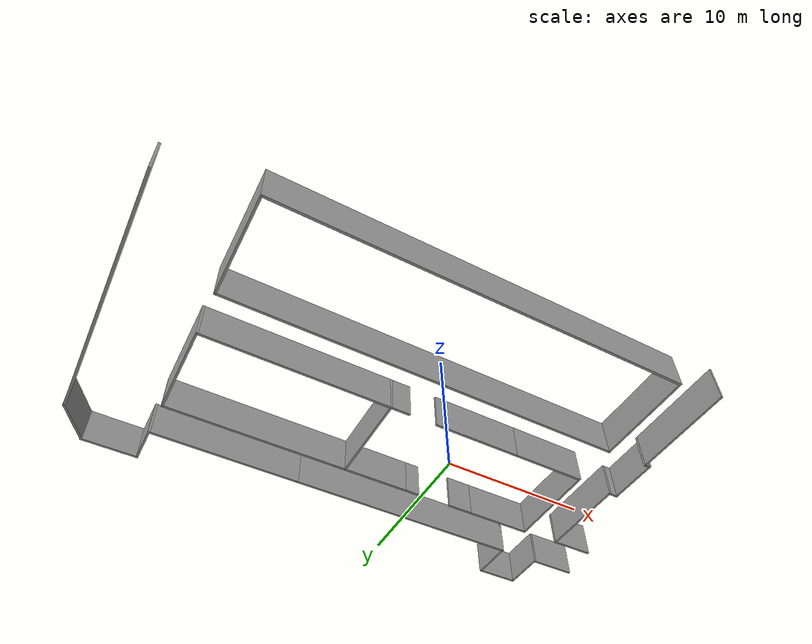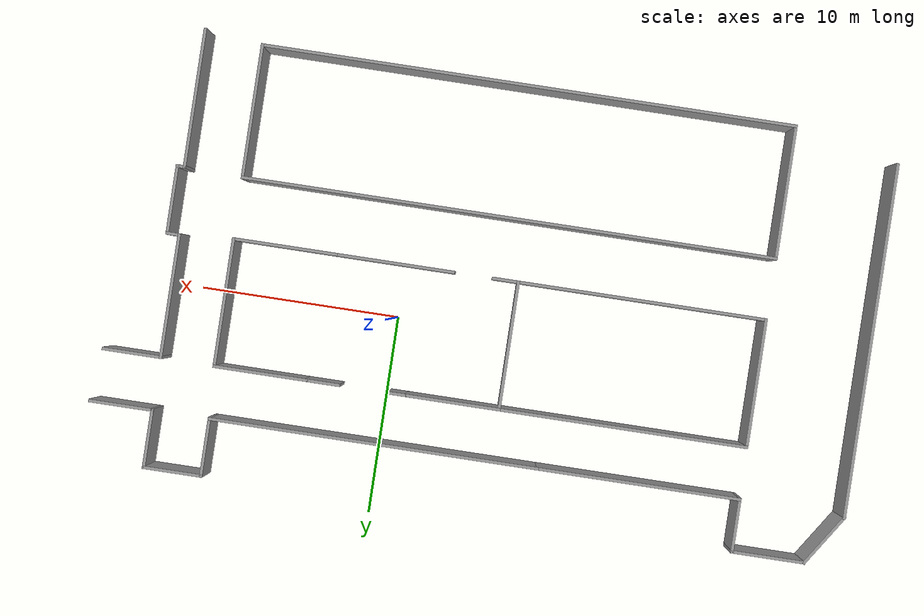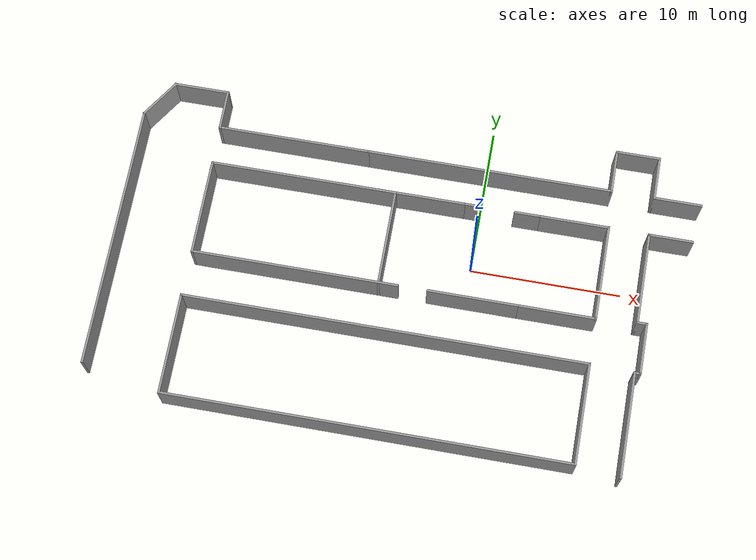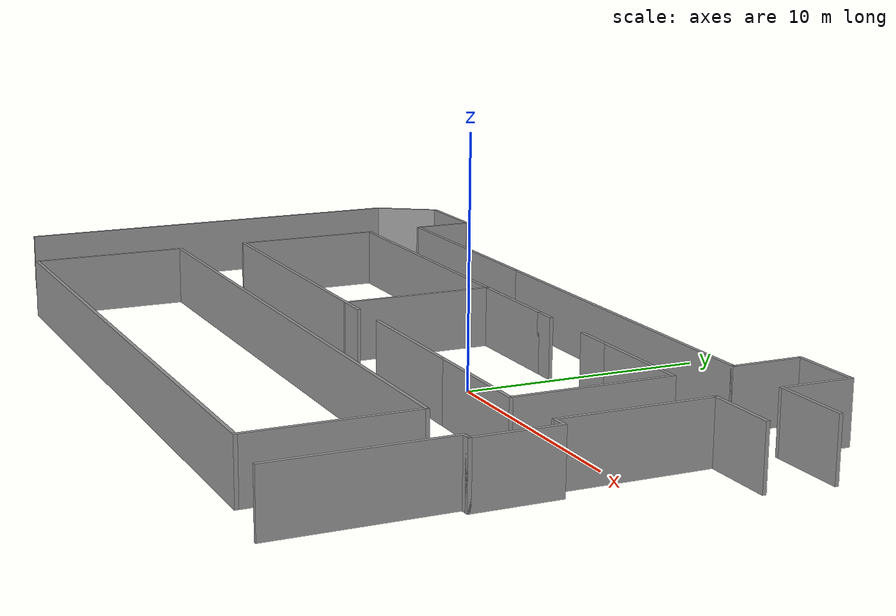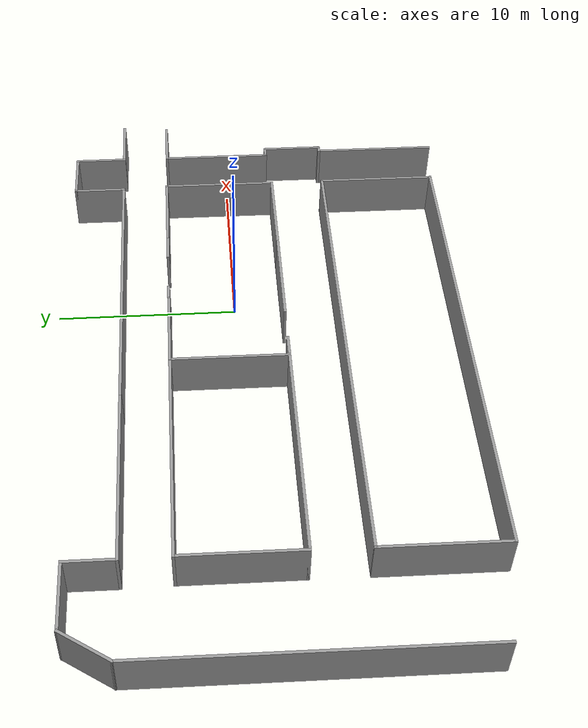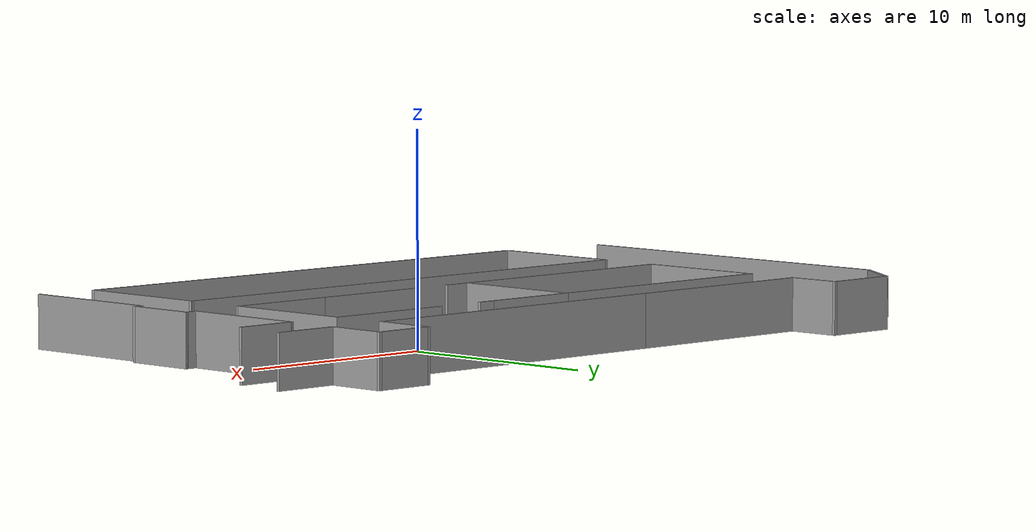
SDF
<?xml version='1.0'?>
<sdf version='1.6'>
  <model name='Sarkeys_Model'>
    <pose frame=''>-4.56198 -1.75072 0 0 -0 0</pose>
    <link name='Wall_32'>
      <collision name='Wall_32_Collision'>
        <geometry>
          <box>
            <size>4.75 0.15 2.5</size>
          </box>
        </geometry>
        <pose frame=''>0 0 1.25 0 -0 0</pose>
      </collision>
      <visual name='Wall_32_Visual'>
        <pose frame=''>0 0 1.25 0 -0 0</pose>
        <geometry>
          <box>
            <size>4.75 0.15 2.5</size>
          </box>
        </geometry>
        <material>
          <script>
            <uri>file://media/materials/scripts/gazebo.material</uri>
            <name>Gazebo/Grey</name>
          </script>
          <ambient>1 1 1 1</ambient>
        </material>
        <meta>
          <layer>0</layer>
        </meta>
      </visual>
      <pose frame=''>1.13149 5.44774 0 0 -0 0</pose>
    </link>
    <link name='Wall_36'>
      <collision name='Wall_36_Collision'>
        <geometry>
          <box>
            <size>6.5 0.15 2.5</size>
          </box>
        </geometry>
        <pose frame=''>0 0 1.25 0 -0 0</pose>
      </collision>
      <visual name='Wall_36_Visual'>
        <pose frame=''>0 0 1.25 0 -0 0</pose>
        <geometry>
          <box>
            <size>6.5 0.15 2.5</size>
          </box>
        </geometry>
        <material>
          <script>
            <uri>file://media/materials/scripts/gazebo.material</uri>
            <name>Gazebo/Grey</name>
          </script>
          <ambient>1 1 1 1</ambient>
        </material>
        <meta>
          <layer>0</layer>
        </meta>
      </visual>
      <pose frame=''>-1.16851 2.27274 0 0 -0 -1.5708</pose>
    </link>
    <link name='Wall_48'>
      <collision name='Wall_48_Collision'>
        <geometry>
          <box>
            <size>16.5 0.15 2.5</size>
          </box>
        </geometry>
        <pose frame=''>0 0 1.25 0 -0 0</pose>
      </collision>
      <visual name='Wall_48_Visual'>
        <pose frame=''>0 0 1.25 0 -0 0</pose>
        <geometry>
          <box>
            <size>16.5 0.15 2.5</size>
          </box>
        </geometry>
        <material>
          <script>
            <uri>file://media/materials/scripts/gazebo.material</uri>
            <name>Gazebo/Grey</name>
          </script>
          <ambient>1 1 1 1</ambient>
        </material>
        <meta>
          <layer>0</layer>
        </meta>
      </visual>
      <pose frame=''>4.70026 8.04291 0 0 -0 0</pose>
    </link>
    <link name='Wall_49'>
      <collision name='Wall_49_Collision'>
        <geometry>
          <box>
            <size>3 0.15 2.5</size>
          </box>
        </geometry>
        <pose frame=''>0 0 1.25 0 -0 0</pose>
      </collision>
      <visual name='Wall_49_Visual'>
        <pose frame=''>0 0 1.25 0 -0 0</pose>
        <geometry>
          <box>
            <size>3 0.15 2.5</size>
          </box>
        </geometry>
        <material>
          <script>
            <uri>file://media/materials/scripts/gazebo.material</uri>
            <name>Gazebo/Grey</name>
          </script>
          <ambient>1 1 1 1</ambient>
        </material>
        <meta>
          <layer>0</layer>
        </meta>
      </visual>
      <pose frame=''>12.8753 9.46791 0 0 -0 1.5708</pose>
    </link>
    <link name='Wall_50'>
      <collision name='Wall_50_Collision'>
        <geometry>
          <box>
            <size>3 0.15 2.5</size>
          </box>
        </geometry>
        <pose frame=''>0 0 1.25 0 -0 0</pose>
      </collision>
      <visual name='Wall_50_Visual'>
        <pose frame=''>0 0 1.25 0 -0 0</pose>
        <geometry>
          <box>
            <size>3 0.15 2.5</size>
          </box>
        </geometry>
        <material>
          <script>
            <uri>file://media/materials/scripts/gazebo.material</uri>
            <name>Gazebo/Grey</name>
          </script>
          <ambient>1 1 1 1</ambient>
        </material>
        <meta>
          <layer>0</layer>
        </meta>
      </visual>
      <pose frame=''>14.3003 10.8929 0 0 -0 0</pose>
    </link>
    <link name='Wall_51'>
      <collision name='Wall_51_Collision'>
        <geometry>
          <box>
            <size>3 0.15 2.5</size>
          </box>
        </geometry>
        <pose frame=''>0 0 1.25 0 -0 0</pose>
      </collision>
      <visual name='Wall_51_Visual'>
        <pose frame=''>0 0 1.25 0 -0 0</pose>
        <geometry>
          <box>
            <size>3 0.15 2.5</size>
          </box>
        </geometry>
        <material>
          <script>
            <uri>file://media/materials/scripts/gazebo.material</uri>
            <name>Gazebo/Grey</name>
          </script>
          <ambient>1 1 1 1</ambient>
        </material>
        <meta>
          <layer>0</layer>
        </meta>
      </visual>
      <pose frame=''>15.7253 9.46791 0 0 -0 -1.5708</pose>
    </link>
    <link name='Wall_52'>
      <collision name='Wall_52_Collision'>
        <geometry>
          <box>
            <size>3.25 0.15 2.5</size>
          </box>
        </geometry>
        <pose frame=''>0 0 1.25 0 -0 0</pose>
      </collision>
      <visual name='Wall_52_Visual'>
        <pose frame=''>0 0 1.25 0 -0 0</pose>
        <geometry>
          <box>
            <size>3.25 0.15 2.5</size>
          </box>
        </geometry>
        <material>
          <script>
            <uri>file://media/materials/scripts/gazebo.material</uri>
            <name>Gazebo/Grey</name>
          </script>
          <ambient>1 1 1 1</ambient>
        </material>
        <meta>
          <layer>0</layer>
        </meta>
      </visual>
      <pose frame=''>17.2753 8.04291 0 0 -0 0</pose>
    </link>
    <link name='Wall_54'>
      <collision name='Wall_54_Collision'>
        <geometry>
          <box>
            <size>10.25 0.15 2.5</size>
          </box>
        </geometry>
        <pose frame=''>0 0 1.25 0 -0 0</pose>
      </collision>
      <visual name='Wall_54_Visual'>
        <pose frame=''>0 0 1.25 0 -0 0</pose>
        <geometry>
          <box>
            <size>10.25 0.15 2.5</size>
          </box>
        </geometry>
        <material>
          <script>
            <uri>file://media/materials/scripts/gazebo.material</uri>
            <name>Gazebo/Grey</name>
          </script>
          <ambient>1 1 1 1</ambient>
        </material>
        <meta>
          <layer>0</layer>
        </meta>
      </visual>
      <pose frame=''>-8.52474 8.04291 0 0 -0 3.14159</pose>
    </link>
    <link name='Wall_56'>
      <collision name='Wall_56_Collision'>
        <geometry>
          <box>
            <size>12.5 0.15 2.5</size>
          </box>
        </geometry>
        <pose frame=''>0 0 1.25 0 -0 0</pose>
      </collision>
      <visual name='Wall_56_Visual'>
        <pose frame=''>0 0 1.25 0 -0 0</pose>
        <geometry>
          <box>
            <size>12.5 0.15 2.5</size>
          </box>
        </geometry>
        <material>
          <script>
            <uri>file://media/materials/scripts/gazebo.material</uri>
            <name>Gazebo/Grey</name>
          </script>
          <ambient>1 1 1 1</ambient>
        </material>
        <meta>
          <layer>0</layer>
        </meta>
      </visual>
      <pose frame=''>-7.34351 5.44774 0 0 -0 3.14159</pose>
    </link>
    <link name='Wall_57'>
      <collision name='Wall_57_Collision'>
        <geometry>
          <box>
            <size>6.5 0.15 2.5</size>
          </box>
        </geometry>
        <pose frame=''>0 0 1.25 0 -0 0</pose>
      </collision>
      <visual name='Wall_57_Visual'>
        <pose frame=''>0 0 1.25 0 -0 0</pose>
        <geometry>
          <box>
            <size>6.5 0.15 2.5</size>
          </box>
        </geometry>
        <material>
          <script>
            <uri>file://media/materials/scripts/gazebo.material</uri>
            <name>Gazebo/Grey</name>
          </script>
          <ambient>1 1 1 1</ambient>
        </material>
        <meta>
          <layer>0</layer>
        </meta>
      </visual>
      <pose frame=''>-13.5185 2.27274 0 0 -0 -1.5708</pose>
    </link>
    <link name='Wall_58'>
      <collision name='Wall_58_Collision'>
        <geometry>
          <box>
            <size>13.75 0.15 2.5</size>
          </box>
        </geometry>
        <pose frame=''>0 0 1.25 0 -0 0</pose>
      </collision>
      <visual name='Wall_58_Visual'>
        <pose frame=''>0 0 1.25 0 -0 0</pose>
        <geometry>
          <box>
            <size>13.75 0.15 2.5</size>
          </box>
        </geometry>
        <material>
          <script>
            <uri>file://media/materials/scripts/gazebo.material</uri>
            <name>Gazebo/Grey</name>
          </script>
          <ambient>1 1 1 1</ambient>
        </material>
        <meta>
          <layer>0</layer>
        </meta>
      </visual>
      <pose frame=''>-6.71851 -0.902257 0 0 -0 0</pose>
    </link>
    <link name='Wall_62'>
      <collision name='Wall_62_Collision'>
        <geometry>
          <box>
            <size>4.75 0.15 2.5</size>
          </box>
        </geometry>
        <pose frame=''>0 0 1.25 0 -0 0</pose>
      </collision>
      <visual name='Wall_62_Visual'>
        <pose frame=''>0 0 1.25 0 -0 0</pose>
        <geometry>
          <box>
            <size>4.75 0.15 2.5</size>
          </box>
        </geometry>
        <material>
          <script>
            <uri>file://media/materials/scripts/gazebo.material</uri>
            <name>Gazebo/Grey</name>
          </script>
          <ambient>1 1 1 1</ambient>
        </material>
        <meta>
          <layer>0</layer>
        </meta>
      </visual>
      <pose frame=''>10.7315 5.44774 0 0 -0 0</pose>
    </link>
    <link name='Wall_63'>
      <collision name='Wall_63_Collision'>
        <geometry>
          <box>
            <size>6.5 0.15 2.5</size>
          </box>
        </geometry>
        <pose frame=''>0 0 1.25 0 -0 0</pose>
      </collision>
      <visual name='Wall_63_Visual'>
        <pose frame=''>0 0 1.25 0 -0 0</pose>
        <geometry>
          <box>
            <size>6.5 0.15 2.5</size>
          </box>
        </geometry>
        <material>
          <script>
            <uri>file://media/materials/scripts/gazebo.material</uri>
            <name>Gazebo/Grey</name>
          </script>
          <ambient>1 1 1 1</ambient>
        </material>
        <meta>
          <layer>0</layer>
        </meta>
      </visual>
      <pose frame=''>13.0315 2.27274 0 0 -0 -1.5708</pose>
    </link>
    <link name='Wall_64'>
      <collision name='Wall_64_Collision'>
        <geometry>
          <box>
            <size>5.25 0.15 2.5</size>
          </box>
        </geometry>
        <pose frame=''>0 0 1.25 0 -0 0</pose>
      </collision>
      <visual name='Wall_64_Visual'>
        <pose frame=''>0 0 1.25 0 -0 0</pose>
        <geometry>
          <box>
            <size>5.25 0.15 2.5</size>
          </box>
        </geometry>
        <material>
          <script>
            <uri>file://media/materials/scripts/gazebo.material</uri>
            <name>Gazebo/Grey</name>
          </script>
          <ambient>1 1 1 1</ambient>
        </material>
        <meta>
          <layer>0</layer>
        </meta>
      </visual>
      <pose frame=''>10.4815 -0.902257 0 0 -0 3.14159</pose>
    </link>
    <link name='Wall_70'>
      <collision name='Wall_70_Collision'>
        <geometry>
          <box>
            <size>17.75 0.15 2.5</size>
          </box>
        </geometry>
        <pose frame=''>0 0 1.25 0 -0 0</pose>
      </collision>
      <visual name='Wall_70_Visual'>
        <pose frame=''>0 0 1.25 0 -0 0</pose>
        <geometry>
          <box>
            <size>17.75 0.15 2.5</size>
          </box>
        </geometry>
        <material>
          <script>
            <uri>file://media/materials/scripts/gazebo.material</uri>
            <name>Gazebo/Grey</name>
          </script>
          <ambient>1 1 1 1</ambient>
        </material>
        <meta>
          <layer>0</layer>
        </meta>
      </visual>
      <pose frame=''>-18.7964 -0.628731 0 0 -0 -1.5708</pose>
    </link>
    <link name='Wall_73'>
      <collision name='Wall_73_Collision'>
        <geometry>
          <box>
            <size>2.75 0.15 2.5</size>
          </box>
        </geometry>
        <pose frame=''>0 0 1.25 0 -0 0</pose>
      </collision>
      <visual name='Wall_73_Visual'>
        <pose frame=''>0 0 1.25 0 -0 0</pose>
        <geometry>
          <box>
            <size>2.75 0.15 2.5</size>
          </box>
        </geometry>
        <material>
          <script>
            <uri>file://media/materials/scripts/gazebo.material</uri>
            <name>Gazebo/Grey</name>
          </script>
          <ambient>1 1 1 1</ambient>
        </material>
        <meta>
          <layer>0</layer>
        </meta>
      </visual>
      <pose frame=''>-13.5747 9.34291 0 0 -0 1.5708</pose>
    </link>
    <link name='Wall_74'>
      <collision name='Wall_74_Collision'>
        <geometry>
          <box>
            <size>3.75 0.15 2.5</size>
          </box>
        </geometry>
        <pose frame=''>0 0 1.25 0 -0 0</pose>
      </collision>
      <visual name='Wall_74_Visual'>
        <pose frame=''>0 0 1.25 0 -0 0</pose>
        <geometry>
          <box>
            <size>3.75 0.15 2.5</size>
          </box>
        </geometry>
        <material>
          <script>
            <uri>file://media/materials/scripts/gazebo.material</uri>
            <name>Gazebo/Grey</name>
          </script>
          <ambient>1 1 1 1</ambient>
        </material>
        <meta>
          <layer>0</layer>
        </meta>
      </visual>
      <pose frame=''>-15.3747 10.6429 0 0 -0 3.14159</pose>
    </link>
    <link name='Wall_75'>
      <collision name='Wall_75_Collision'>
        <geometry>
          <box>
            <size>3.10615 0.15 2.5</size>
          </box>
        </geometry>
        <pose frame=''>0 0 1.25 0 -0 0</pose>
      </collision>
      <visual name='Wall_75_Visual'>
        <pose frame=''>0 0 1.25 0 -0 0</pose>
        <geometry>
          <box>
            <size>3.10615 0.15 2.5</size>
          </box>
        </geometry>
        <material>
          <script>
            <uri>file://media/materials/scripts/gazebo.material</uri>
            <name>Gazebo/Grey</name>
          </script>
          <ambient>1 1 1 1</ambient>
        </material>
        <meta>
          <layer>0</layer>
        </meta>
      </visual>
      <pose frame=''>-17.9856 9.40709 0 0 -0 -2.15146</pose>
    </link>
    <link name='Wall_77'>
      <collision name='Wall_77_Collision'>
        <geometry>
          <box>
            <size>26.75 0.15 2.5</size>
          </box>
        </geometry>
        <pose frame=''>0 0 1.25 0 -0 0</pose>
      </collision>
      <visual name='Wall_77_Visual'>
        <pose frame=''>0 0 1.25 0 -0 0</pose>
        <geometry>
          <box>
            <size>26.75 0.15 2.5</size>
          </box>
        </geometry>
        <material>
          <script>
            <uri>file://media/materials/scripts/gazebo.material</uri>
            <name>Gazebo/Grey</name>
          </script>
          <ambient>1 1 1 1</ambient>
        </material>
        <meta>
          <layer>0</layer>
        </meta>
      </visual>
      <pose frame=''>-0.243055 -3.96346 0 0 -0 0</pose>
    </link>
    <link name='Wall_78'>
      <collision name='Wall_78_Collision'>
        <geometry>
          <box>
            <size>6.75 0.15 2.5</size>
          </box>
        </geometry>
        <pose frame=''>0 0 1.25 0 -0 0</pose>
      </collision>
      <visual name='Wall_78_Visual'>
        <pose frame=''>0 0 1.25 0 -0 0</pose>
        <geometry>
          <box>
            <size>6.75 0.15 2.5</size>
          </box>
        </geometry>
        <material>
          <script>
            <uri>file://media/materials/scripts/gazebo.material</uri>
            <name>Gazebo/Grey</name>
          </script>
          <ambient>1 1 1 1</ambient>
        </material>
        <meta>
          <layer>0</layer>
        </meta>
      </visual>
      <pose frame=''>13.0569 -7.26346 0 0 -0 -1.5708</pose>
    </link>
    <link name='Wall_81'>
      <collision name='Wall_81_Collision'>
        <geometry>
          <box>
            <size>26.75 0.15 2.5</size>
          </box>
        </geometry>
        <pose frame=''>0 0 1.25 0 -0 0</pose>
      </collision>
      <visual name='Wall_81_Visual'>
        <pose frame=''>0 0 1.25 0 -0 0</pose>
        <geometry>
          <box>
            <size>26.75 0.15 2.5</size>
          </box>
        </geometry>
        <material>
          <script>
            <uri>file://media/materials/scripts/gazebo.material</uri>
            <name>Gazebo/Grey</name>
          </script>
          <ambient>1 1 1 1</ambient>
        </material>
        <meta>
          <layer>0</layer>
        </meta>
      </visual>
      <pose frame=''>-0.243055 -10.5635 0 0 -0 3.14159</pose>
    </link>
    <link name='Wall_82'>
      <collision name='Wall_82_Collision'>
        <geometry>
          <box>
            <size>6.75 0.15 2.5</size>
          </box>
        </geometry>
        <pose frame=''>0 0 1.25 0 -0 0</pose>
      </collision>
      <visual name='Wall_82_Visual'>
        <pose frame=''>0 0 1.25 0 -0 0</pose>
        <geometry>
          <box>
            <size>6.75 0.15 2.5</size>
          </box>
        </geometry>
        <material>
          <script>
            <uri>file://media/materials/scripts/gazebo.material</uri>
            <name>Gazebo/Grey</name>
          </script>
          <ambient>1 1 1 1</ambient>
        </material>
        <meta>
          <layer>0</layer>
        </meta>
      </visual>
      <pose frame=''>-13.5431 -7.26346 0 0 -0 1.5708</pose>
    </link>
    <link name='Wall_84'>
      <collision name='Wall_84_Collision'>
        <geometry>
          <box>
            <size>6.25 0.15 2.5</size>
          </box>
        </geometry>
        <pose frame=''>0 0 1.25 0 -0 0</pose>
      </collision>
      <visual name='Wall_84_Visual'>
        <pose frame=''>0 0 1.25 0 -0 0</pose>
        <geometry>
          <box>
            <size>6.25 0.15 2.5</size>
          </box>
        </geometry>
        <material>
          <script>
            <uri>file://media/materials/scripts/gazebo.material</uri>
            <name>Gazebo/Grey</name>
          </script>
          <ambient>1 1 1 1</ambient>
        </material>
        <meta>
          <layer>0</layer>
        </meta>
      </visual>
      <pose frame=''>15.7093 2.35709 0 0 -0 -1.5708</pose>
    </link>
    <link name='Wall_85'>
      <collision name='Wall_85_Collision'>
        <geometry>
          <box>
            <size>0.75 0.15 2.5</size>
          </box>
        </geometry>
        <pose frame=''>0 0 1.25 0 -0 0</pose>
      </collision>
      <visual name='Wall_85_Visual'>
        <pose frame=''>0 0 1.25 0 -0 0</pose>
        <geometry>
          <box>
            <size>0.75 0.15 2.5</size>
          </box>
        </geometry>
        <material>
          <script>
            <uri>file://media/materials/scripts/gazebo.material</uri>
            <name>Gazebo/Grey</name>
          </script>
          <ambient>1 1 1 1</ambient>
        </material>
        <meta>
          <layer>0</layer>
        </meta>
      </visual>
      <pose frame=''>16.0093 -0.692908 0 0 -0 0</pose>
    </link>
    <link name='Wall_86'>
      <collision name='Wall_86_Collision'>
        <geometry>
          <box>
            <size>3.5 0.15 2.5</size>
          </box>
        </geometry>
        <pose frame=''>0 0 1.25 0 -0 0</pose>
      </collision>
      <visual name='Wall_86_Visual'>
        <pose frame=''>0 0 1.25 0 -0 0</pose>
        <geometry>
          <box>
            <size>3.5 0.15 2.5</size>
          </box>
        </geometry>
        <material>
          <script>
            <uri>file://media/materials/scripts/gazebo.material</uri>
            <name>Gazebo/Grey</name>
          </script>
          <ambient>1 1 1 1</ambient>
        </material>
        <meta>
          <layer>0</layer>
        </meta>
      </visual>
      <pose frame=''>16.3093 -2.36791 0 0 -0 -1.5708</pose>
    </link>
    <link name='Wall_87'>
      <collision name='Wall_87_Collision'>
        <geometry>
          <box>
            <size>0.5 0.15 2.5</size>
          </box>
        </geometry>
        <pose frame=''>0 0 1.25 0 -0 0</pose>
      </collision>
      <visual name='Wall_87_Visual'>
        <pose frame=''>0 0 1.25 0 -0 0</pose>
        <geometry>
          <box>
            <size>0.5 0.15 2.5</size>
          </box>
        </geometry>
        <material>
          <script>
            <uri>file://media/materials/scripts/gazebo.material</uri>
            <name>Gazebo/Grey</name>
          </script>
          <ambient>1 1 1 1</ambient>
        </material>
        <meta>
          <layer>0</layer>
        </meta>
      </visual>
      <pose frame=''>16.1343 -4.04291 0 0 -0 3.14159</pose>
    </link>
    <link name='Wall_88'>
      <collision name='Wall_88_Collision'>
        <geometry>
          <box>
            <size>7 0.15 2.5</size>
          </box>
        </geometry>
        <pose frame=''>0 0 1.25 0 -0 0</pose>
      </collision>
      <visual name='Wall_88_Visual'>
        <pose frame=''>0 0 1.25 0 -0 0</pose>
        <geometry>
          <box>
            <size>7 0.15 2.5</size>
          </box>
        </geometry>
        <material>
          <script>
            <uri>file://media/materials/scripts/gazebo.material</uri>
            <name>Gazebo/Grey</name>
          </script>
          <ambient>1 1 1 1</ambient>
        </material>
        <meta>
          <layer>0</layer>
        </meta>
      </visual>
      <pose frame=''>15.9593 -7.46791 0 0 -0 -1.5708</pose>
    </link>
    <link name='Wall_90'>
      <collision name='Wall_90_Collision'>
        <geometry>
          <box>
            <size>3 0.15 2.5</size>
          </box>
        </geometry>
        <pose frame=''>0 0 1.25 0 -0 0</pose>
      </collision>
      <visual name='Wall_90_Visual'>
        <pose frame=''>0 0 1.25 0 -0 0</pose>
        <geometry>
          <box>
            <size>3 0.15 2.5</size>
          </box>
        </geometry>
        <material>
          <script>
            <uri>file://media/materials/scripts/gazebo.material</uri>
            <name>Gazebo/Grey</name>
          </script>
          <ambient>1 1 1 1</ambient>
        </material>
        <meta>
          <layer>0</layer>
        </meta>
      </visual>
      <pose frame=''>17.1343 5.40709 0 0 -0 0</pose>
    </link>
    <link name='Wall_92'>
      <collision name='Wall_92_Collision'>
        <geometry>
          <box>
            <size>1 0.15 2.5</size>
          </box>
        </geometry>
        <pose frame=''>0 0 1.25 0 -0 0</pose>
      </collision>
      <visual name='Wall_92_Visual'>
        <pose frame=''>0 0 1.25 0 -0 0</pose>
        <geometry>
          <box>
            <size>1 0.15 2.5</size>
          </box>
        </geometry>
        <material>
          <script>
            <uri>file://media/materials/scripts/gazebo.material</uri>
            <name>Gazebo/Grey</name>
          </script>
          <ambient>1 1 1 1</ambient>
        </material>
        <meta>
          <layer>0</layer>
        </meta>
      </visual>
      <pose frame=''>3.85649 5.44774 0 0 -0 0</pose>
    </link>
    <link name='Wall_94'>
      <collision name='Wall_94_Collision'>
        <geometry>
          <box>
            <size>1.75 0.15 2.5</size>
          </box>
        </geometry>
        <pose frame=''>0 0 1.25 0 -0 0</pose>
      </collision>
      <visual name='Wall_94_Visual'>
        <pose frame=''>0 0 1.25 0 -0 0</pose>
        <geometry>
          <box>
            <size>1.75 0.15 2.5</size>
          </box>
        </geometry>
        <material>
          <script>
            <uri>file://media/materials/scripts/gazebo.material</uri>
            <name>Gazebo/Grey</name>
          </script>
          <ambient>1 1 1 1</ambient>
        </material>
        <meta>
          <layer>0</layer>
        </meta>
      </visual>
      <pose frame=''>7.63149 5.44774 0 0 -0 3.14159</pose>
    </link>
    <link name='Wall_96'>
      <collision name='Wall_96_Collision'>
        <geometry>
          <box>
            <size>6 0.15 2.5</size>
          </box>
        </geometry>
        <pose frame=''>0 0 1.25 0 -0 0</pose>
      </collision>
      <visual name='Wall_96_Visual'>
        <pose frame=''>0 0 1.25 0 -0 0</pose>
        <geometry>
          <box>
            <size>6 0.15 2.5</size>
          </box>
        </geometry>
        <material>
          <script>
            <uri>file://media/materials/scripts/gazebo.material</uri>
            <name>Gazebo/Grey</name>
          </script>
          <ambient>1 1 1 1</ambient>
        </material>
        <meta>
          <layer>0</layer>
        </meta>
      </visual>
      <pose frame=''>5.00649 -0.902257 0 0 -0 3.14159</pose>
    </link>
    <static>1</static>
  </model>
</sdf>
